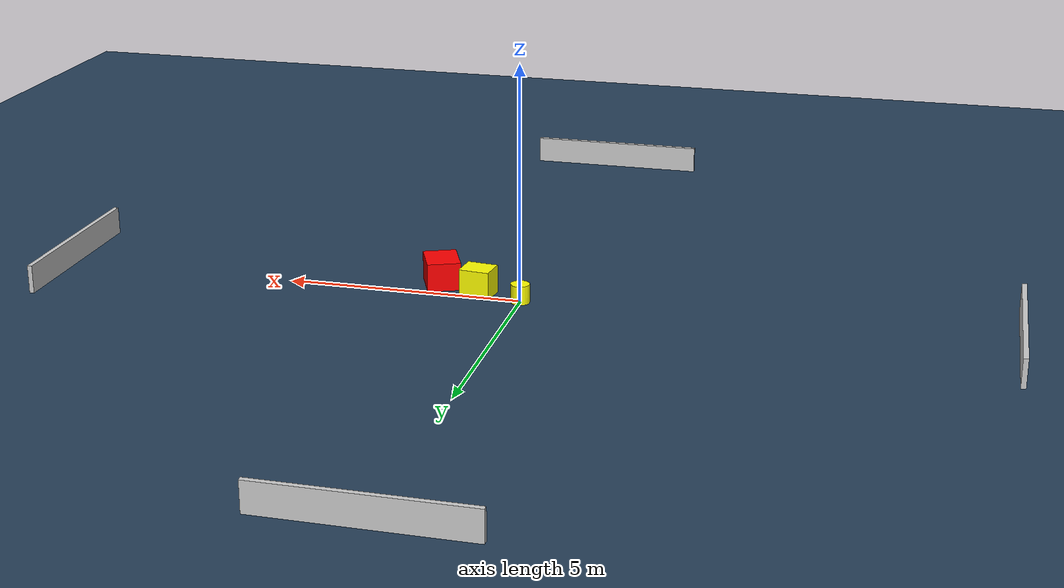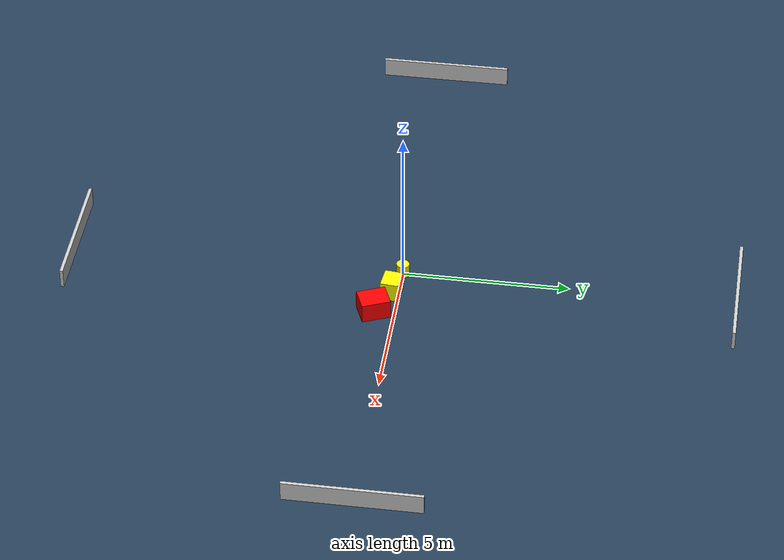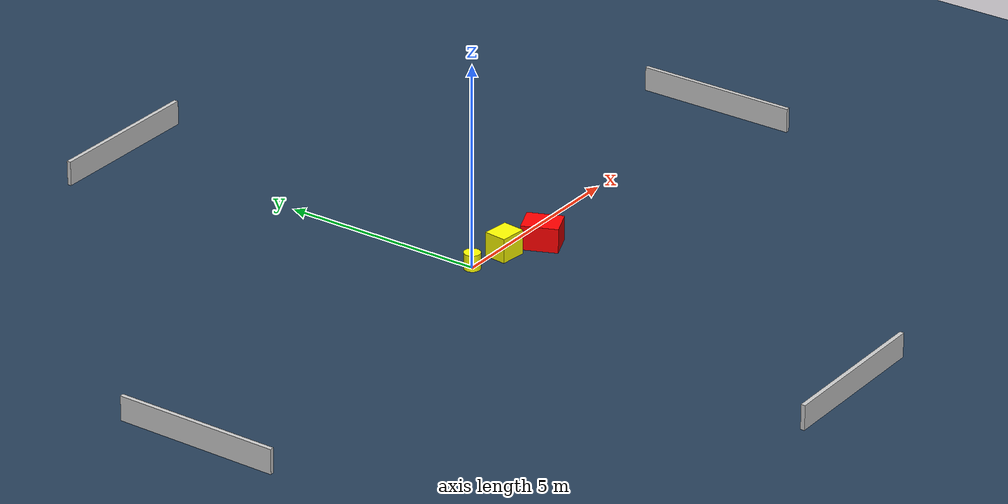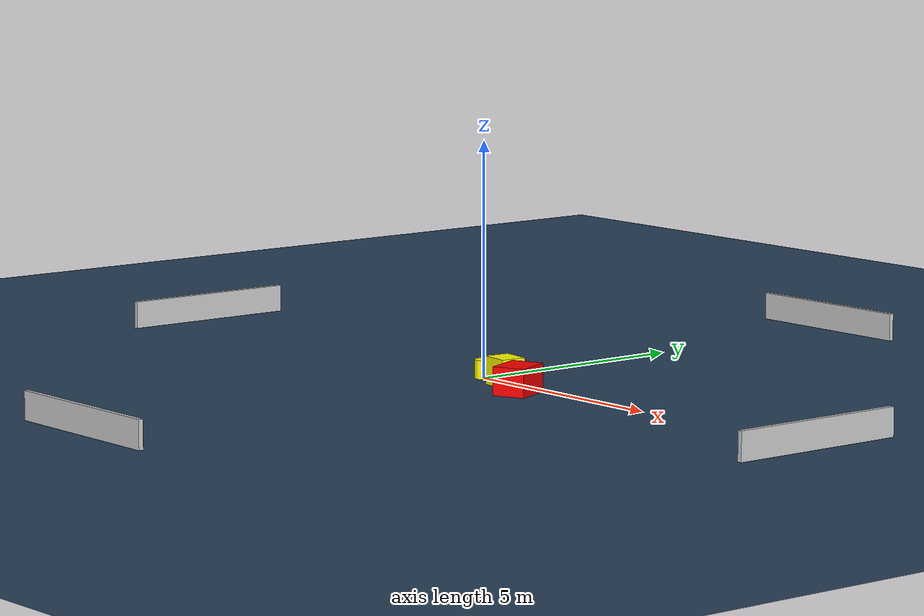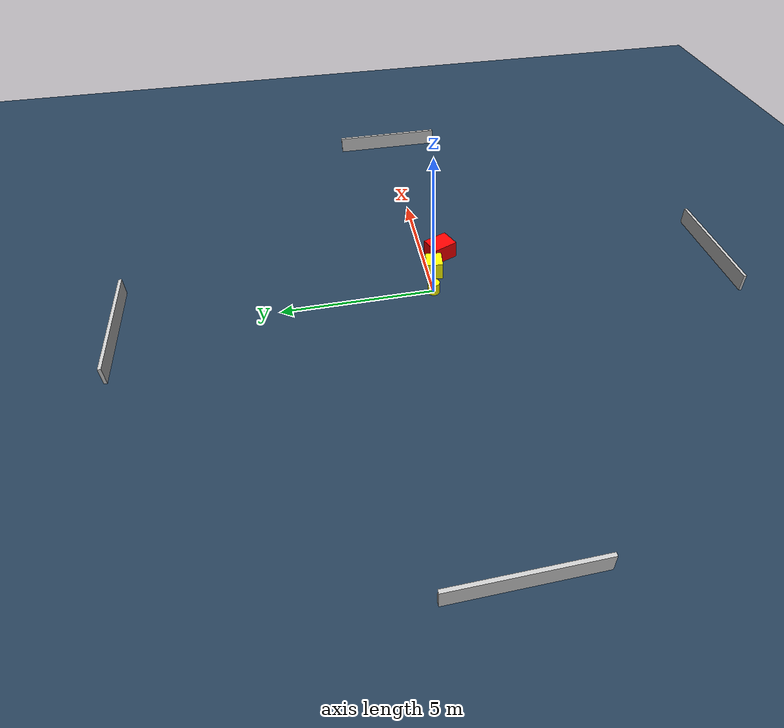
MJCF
<?xml version="1.0" ?>
<mujoco model="generated_environment">
  <option timestep="0.01" integrator="RK4" cone="elliptic"/>
  <default>
    <geom density="1"/>
  </default>
  <asset>
    <texture builtin="gradient" height="3072" name="skybox" rgb1="0.3 0.5 0.7" rgb2="0 0 0" type="skybox" width="512"/>
    <texture builtin="checker" height="300" name="groundplane" rgb1="0.2 0.3 0.4" rgb2="0.1 0.2 0.3" type="2d" width="300"/>
    <material name="groundplane" reflectance="0.2" texrepeat="5 5" texture="groundplane"/>
  </asset>
  <worldbody>
    <light dir="0 0 -1" directional="true" pos="0 0 1.5"/>
    <geom condim="3" friction="0.5 0.005 0.001" material="groundplane" name="floor" pos="0 0 0" size="0 0 0.05" type="plane"/>
    <body name="walls">
      <geom name="wall_1" condim="4" pos="-10.0 0.0 0.3" rgba="0.800000011920929 0.800000011920929 0.800000011920929 1.0" size="0.05 2.0 0.3" type="box"/>
      <geom name="wall_2" condim="4" pos="10.0 0.0 0.3" rgba="0.800000011920929 0.800000011920929 0.800000011920929 1.0" size="0.05 2.0 0.3" type="box"/>
      <geom name="wall_3" condim="4" pos="0.0 -10.0 0.3" rgba="0.800000011920929 0.800000011920929 0.800000011920929 1.0" size="2.0 0.05 0.3" type="box"/>
      <geom name="wall_4" condim="4" pos="0.0 10.0 0.3" rgba="0.800000011920929 0.800000011920929 0.800000011920929 1.0" size="2.0 0.05 0.3" type="box"/>
    </body>
    <body name="robot">
      <joint name="joint_x" type="slide" pos="0 0 0" axis="1 0 0"/>
      <joint name="joint_y" type="slide" pos="0 0 0" axis="0 1 0"/>
      <geom name="robot" type="cylinder" pos="0.0 0.0 0.2" size="0.2 0.2 0.0" mass="5.0" friction="1.0 0.005 0.0001" condim="4" rgba="1.0 1.0 0.0 1.0"/>
    </body>
    <body name="obstacle_1_movable">
      <geom name="obstacle_1_movable" condim="4" pos="0.9503946752756183 -0.20675751229488099 0.3" euler="0 0 263.5986871062509" friction="0.0 0.005 0.001" rgba="1.0 1.0 0.0 1.0" size="0.27392392762820206 0.32378439907503714 0.3" type="box" mass="0.1"/>
      <joint type="free"/>
    </body>
    <body name="obstacle_2_static">
      <geom name="obstacle_2_static" condim="4" pos="1.8612196697535353 -0.6196961926154135 0.3" euler="0 0 292.9260925914205" friction="0.0 0.005 0.001" rgba="1.0 0.0 0.0 1.0" size="0.43677240993936056 0.352878029255907 0.3" type="box"/>
    </body>
  </worldbody>
  <actuator>
    <motor name="actuator_x" joint="joint_x" gear="1" ctrlrange="-1 1"/>
    <motor name="actuator_y" joint="joint_y" gear="1" ctrlrange="-1 1"/>
  </actuator>
</mujoco>
